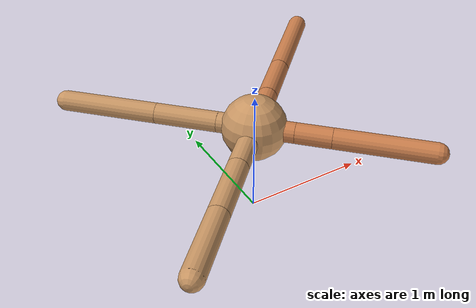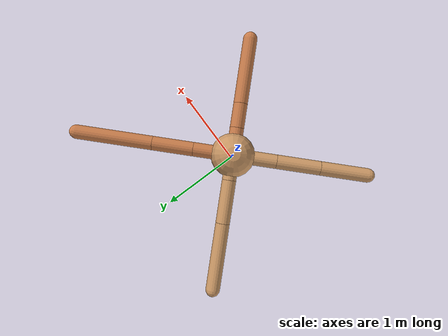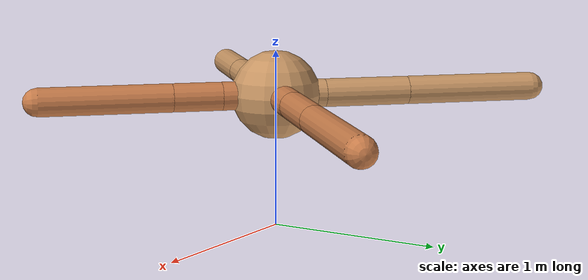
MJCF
<mujoco model="ant">
  <compiler angle="degree" coordinate="local" inertiafromgeom="true" />
  <option integrator="RK4" timestep="0.01" />
  <custom>
    <numeric data="0.0 0.0 0.55 1.0 0.0 0.0 0.0 0.0 1.0 0.0 -1.0 0.0 -1.0 0.0 1.0" name="init_qpos" />
  </custom>
  <default>
    <joint armature="1" damping="1" limited="true" />
    <geom conaffinity="0" condim="3" density="5.0" friction="1.5 0.1 0.1" margin="0.01" rgba="0.8 0.6 0.4 1" />
  </default>
  <worldbody>
    <body name="torso" pos="0 0 0.75">
      <geom name="torso_geom" pos="0 0 0" size="0.25" type="sphere" />

      <body name="front_left_leg" pos="0 0 0">
        <geom fromto="0.0 0.0 0.0 0.3180239561081166 0.3180239561081166 0.0" name="aux_1_geom" size="0.08" type="capsule" rgba=".8 .5 .3 1" />
        <body name="aux_1" pos="0.3180239561081166 0.3180239561081166 0.0">
          <joint axis="0 0 1" name="hip_1" pos="0.0 0.0 0.0" range="-40 40" type="hinge" />
          <geom fromto="0.0 0.0 0.0 0.32526622564834723 0.32526622564834723 0.0" name="left_leg_geom" size="0.08" type="capsule" rgba=".8 .5 .3 1" />
          <body pos="0.32526622564834723 0.32526622564834723 0.0" name="front_left_foot">
            <joint axis="-1 1 0" name="ankle_1" pos="0.0 0.0 0.0" range="30 100" type="hinge" />
            <geom fromto="0.0 0.0 0.0 0.6110037450126095 0.6110037450126095 0.0" name="left_ankle_geom" size="0.08" type="capsule" rgba=".8 .5 .3 1" />
          </body>
        </body>
      </body>
      <body name="front_right_leg" pos="0 0 0">
        <geom fromto="0.0 0.0 0.0 -0.2 0.2 0.0" name="aux_2_geom" size="0.08" type="capsule" />
        <body name="aux_2" pos="-0.2 0.2 0.0">
          <joint axis="0 0 1" name="hip_2" pos="0.0 0.0 0.0" range="-40 40" type="hinge" />
          <geom fromto="0.0 0.0 0.0 -0.3436031425123106 0.3436031425123106 0.0" name="right_leg_geom" size="0.08" type="capsule" />
          <body pos="-0.3436031425123106 0.3436031425123106 0.0" name="front_right_foot">
            <joint axis="1 1 0" name="ankle_2" pos="0.0 0.0 0.0" range="-100 -30" type="hinge" />
            <geom fromto="0.0 0.0 0.0 -0.5274526764766326 0.5274526764766326 0.0" name="right_ankle_geom" size="0.08" type="capsule" />
          </body>
        </body>
      </body>
      <body name="left_back_leg" pos="0 0 0">
        <geom fromto="0.0 0.0 0.0 -0.3468186842532849 -0.3468186842532849 0.0" name="aux_3_geom" size="0.08" type="capsule" />
        <body name="aux_3" pos="-0.3468186842532849 -0.3468186842532849 0.0">
          <joint axis="0 0 1" name="hip_3" pos="0.0 0.0 0.0" range="-40 40" type="hinge" />
          <geom fromto="0.0 0.0 0.0 -0.3492160961506804 -0.3492160961506804 0.0" name="back_leg_geom" size="0.08" type="capsule" />
          <body pos="-0.3492160961506804 -0.3492160961506804 0.0" name="left_back_foot">
            <joint axis="-1 1 0" name="ankle_3" pos="0.0 0.0 0.0" range="-100 -30" type="hinge" />
            <geom fromto="0.0 0.0 0.0 -0.3811627933345223 -0.3811627933345223 0.0" name="third_ankle_geom" size="0.08" type="capsule" />
          </body>
        </body>
      </body>
      <body name="right_back_leg" pos="0 0 0">
        <geom fromto="0.0 0.0 0.0 0.2184894766337827 -0.2184894766337827 0.0" name="aux_4_geom" size="0.08" type="capsule" rgba=".8 .5 .3 1" />
        <body name="aux_4" pos="0.2184894766337827 -0.2184894766337827 0.0">
          <joint axis="0 0 1" name="hip_4" pos="0.0 0.0 0.0" range="-40 40" type="hinge" />
          <geom fromto="0.0 0.0 0.0 0.19545508317395763 -0.19545508317395763 0.0" name="rightback_leg_geom" size="0.08" type="capsule" rgba=".8 .5 .3 1" />
          <body pos="0.19545508317395763 -0.19545508317395763 0.0" name="right_back_foot">
            <joint axis="1 1 0" name="ankle_4" pos="0.0 0.0 0.0" range="30 100" type="hinge" />
            <geom fromto="0.0 0.0 0.0 0.523861303692092 -0.523861303692092 0.0" name="fourth_ankle_geom" size="0.08" type="capsule" rgba=".8 .5 .3 1" />
          </body>
        </body>
      </body>
    </body>
  </worldbody>
  <actuator>
    <motor ctrllimited="true" ctrlrange="-1.0 1.0" joint="hip_4" gear="150" />
    <motor ctrllimited="true" ctrlrange="-1.0 1.0" joint="ankle_4" gear="150" />
    <motor ctrllimited="true" ctrlrange="-1.0 1.0" joint="hip_1" gear="150" />
    <motor ctrllimited="true" ctrlrange="-1.0 1.0" joint="ankle_1" gear="150" />
    <motor ctrllimited="true" ctrlrange="-1.0 1.0" joint="hip_2" gear="150" />
    <motor ctrllimited="true" ctrlrange="-1.0 1.0" joint="ankle_2" gear="150" />
    <motor ctrllimited="true" ctrlrange="-1.0 1.0" joint="hip_3" gear="150" />
    <motor ctrllimited="true" ctrlrange="-1.0 1.0" joint="ankle_3" gear="150" />
  </actuator>
</mujoco>
